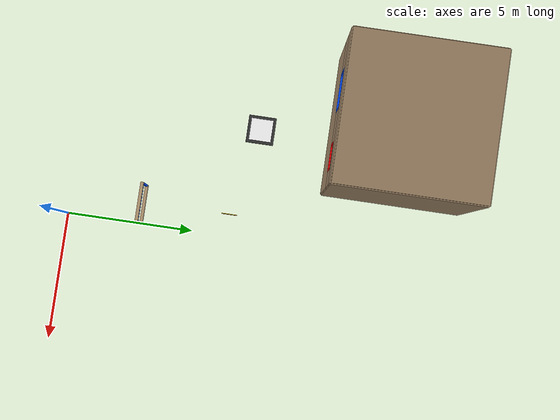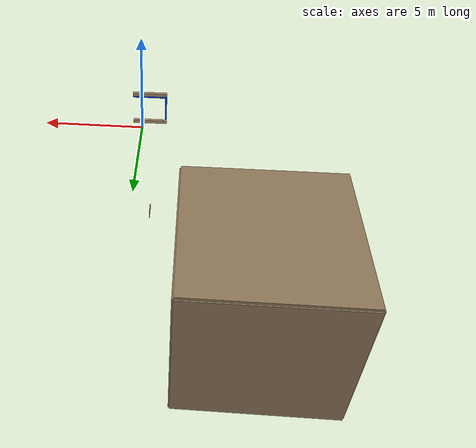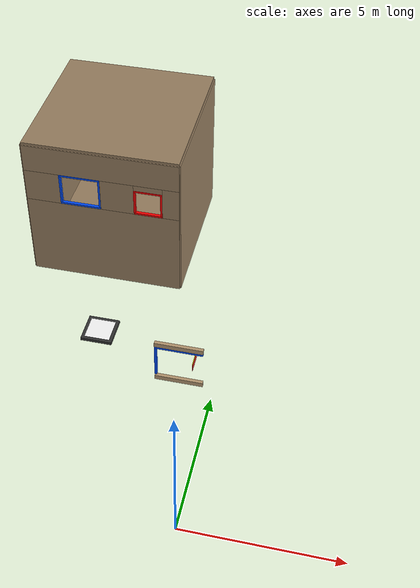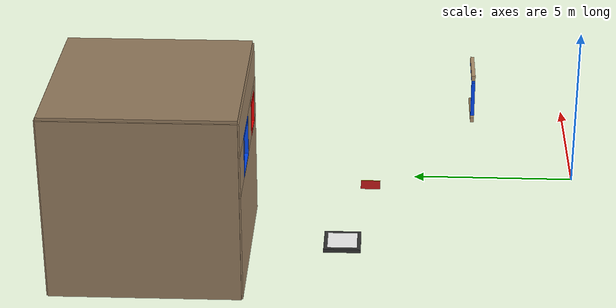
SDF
<sdf version="1.9">
 <world name="imav2026_scaled">
  <model name="room_floor">
   <static>true</static>
   <pose>-4.95 12.65 0.022 0 0 0</pose>
   <link name="link">
    <collision name="col"><geometry><box><size>5.5 5.5 0.044</size></box></geometry></collision>
    <visual name="v">
     <geometry><box><size>5.5 5.5 0.044</size></box></geometry>
     <material>
      <ambient>0.60 0.50 0.38 1</ambient>
      <diffuse>0.60 0.50 0.38 1</diffuse>
      <pbr><metal><roughness>0.8</roughness><metalness>0.0</metalness></metal></pbr>
     </material>
    </visual>
   </link>
  </model>
  <model name="room_N">
   <static>true</static>
   <pose>-4.95 15.4 2.75 0 0 0</pose>
   <link name="link">
    <collision name="col"><geometry><box><size>5.5 0.088 5.5</size></box></geometry></collision>
    <visual name="v">
     <geometry><box><size>5.5 0.088 5.5</size></box></geometry>
     <material>
      <ambient>0.60 0.50 0.38 1</ambient>
      <diffuse>0.60 0.50 0.38 1</diffuse>
      <pbr><metal><roughness>0.8</roughness><metalness>0.0</metalness></metal></pbr>
     </material>
    </visual>
   </link>
  </model>
  <model name="room_W">
   <static>true</static>
   <pose>-7.7 12.65 2.75 0 0 0</pose>
   <link name="link">
    <collision name="col"><geometry><box><size>0.088 5.5 5.5</size></box></geometry></collision>
    <visual name="v">
     <geometry><box><size>0.088 5.5 5.5</size></box></geometry>
     <material>
      <ambient>0.60 0.50 0.38 1</ambient>
      <diffuse>0.60 0.50 0.38 1</diffuse>
      <pbr><metal><roughness>0.8</roughness><metalness>0.0</metalness></metal></pbr>
     </material>
    </visual>
   </link>
  </model>
  <model name="room_E">
   <static>true</static>
   <pose>-2.2 12.65 2.75 0 0 0</pose>
   <link name="link">
    <collision name="col"><geometry><box><size>0.088 5.5 5.5</size></box></geometry></collision>
    <visual name="v">
     <geometry><box><size>0.088 5.5 5.5</size></box></geometry>
     <material>
      <ambient>0.60 0.50 0.38 1</ambient>
      <diffuse>0.60 0.50 0.38 1</diffuse>
      <pbr><metal><roughness>0.8</roughness><metalness>0.0</metalness></metal></pbr>
     </material>
    </visual>
   </link>
  </model>
  <model name="room_ceil">
   <static>true</static>
   <pose>-4.95 12.65 5.544 0 0 0</pose>
   <link name="link">
    <collision name="col"><geometry><box><size>5.5 5.5 0.088</size></box></geometry></collision>
    <visual name="v">
     <geometry><box><size>5.5 5.5 0.088</size></box></geometry>
     <material>
      <ambient>0.60 0.50 0.38 1</ambient>
      <diffuse>0.60 0.50 0.38 1</diffuse>
      <pbr><metal><roughness>0.8</roughness><metalness>0.0</metalness></metal></pbr>
     </material>
    </visual>
   </link>
  </model>
  <model name="room_S_bot">
   <static>true</static>
   <pose>-4.95 9.9 1.617 0 0 0</pose>
   <link name="link">
    <collision name="col"><geometry><box><size>5.5 0.088 3.234</size></box></geometry></collision>
    <visual name="v">
     <geometry><box><size>5.5 0.088 3.234</size></box></geometry>
     <material>
      <ambient>0.60 0.50 0.38 1</ambient>
      <diffuse>0.60 0.50 0.38 1</diffuse>
      <pbr><metal><roughness>0.8</roughness><metalness>0.0</metalness></metal></pbr>
     </material>
    </visual>
   </link>
  </model>
  <model name="room_S_top">
   <static>true</static>
   <pose>-4.95 9.9 4.983 0 0 0</pose>
   <link name="link">
    <collision name="col"><geometry><box><size>5.5 0.088 1.034</size></box></geometry></collision>
    <visual name="v">
     <geometry><box><size>5.5 0.088 1.034</size></box></geometry>
     <material>
      <ambient>0.60 0.50 0.38 1</ambient>
      <diffuse>0.60 0.50 0.38 1</diffuse>
      <pbr><metal><roughness>0.8</roughness><metalness>0.0</metalness></metal></pbr>
     </material>
    </visual>
   </link>
  </model>
  <model name="room_S_seg_L">
   <static>true</static>
   <pose>-7.073 9.9 3.85 0 0 0</pose>
   <link name="link">
    <collision name="col"><geometry><box><size>1.254 0.088 1.232</size></box></geometry></collision>
    <visual name="v">
     <geometry><box><size>1.254 0.088 1.232</size></box></geometry>
     <material>
      <ambient>0.60 0.50 0.38 1</ambient>
      <diffuse>0.60 0.50 0.38 1</diffuse>
      <pbr><metal><roughness>0.8</roughness><metalness>0.0</metalness></metal></pbr>
     </material>
    </visual>
   </link>
  </model>
  <model name="room_S_seg_M">
   <static>true</static>
   <pose>-4.4 9.9 3.85 0 0 0</pose>
   <link name="link">
    <collision name="col"><geometry><box><size>1.188 0.088 1.232</size></box></geometry></collision>
    <visual name="v">
     <geometry><box><size>1.188 0.088 1.232</size></box></geometry>
     <material>
      <ambient>0.60 0.50 0.38 1</ambient>
      <diffuse>0.60 0.50 0.38 1</diffuse>
      <pbr><metal><roughness>0.8</roughness><metalness>0.0</metalness></metal></pbr>
     </material>
    </visual>
   </link>
  </model>
  <model name="room_S_seg_R">
   <static>true</static>
   <pose>-2.497 9.9 3.85 0 0 0</pose>
   <link name="link">
    <collision name="col"><geometry><box><size>0.594 0.088 1.232</size></box></geometry></collision>
    <visual name="v">
     <geometry><box><size>0.594 0.088 1.232</size></box></geometry>
     <material>
      <ambient>0.60 0.50 0.38 1</ambient>
      <diffuse>0.60 0.50 0.38 1</diffuse>
      <pbr><metal><roughness>0.8</roughness><metalness>0.0</metalness></metal></pbr>
     </material>
    </visual>
   </link>
  </model>
  <model name="room_S_seg_above_red">
   <static>true</static>
   <pose>-3.3 9.9 4.356 0 0 0</pose>
   <link name="link">
    <collision name="col"><geometry><box><size>1.012 0.088 0.22</size></box></geometry></collision>
    <visual name="v">
     <geometry><box><size>1.012 0.088 0.22</size></box></geometry>
     <material>
      <ambient>0.60 0.50 0.38 1</ambient>
      <diffuse>0.60 0.50 0.38 1</diffuse>
      <pbr><metal><roughness>0.8</roughness><metalness>0.0</metalness></metal></pbr>
     </material>
    </visual>
   </link>
  </model>
  <model name="room_blue_top">
   <static>true</static>
   <pose>-5.72 9.9 4.433 0 0 0</pose>
   <link name="link">
    <collision name="col"><geometry><box><size>1.452 0.11 0.066</size></box></geometry></collision>
    <visual name="v">
     <geometry><box><size>1.452 0.11 0.066</size></box></geometry>
     <material>
      <ambient>0.0 0.3 1.0 1</ambient>
      <diffuse>0.0 0.3 1.0 1</diffuse>
      <pbr><metal><roughness>0.5</roughness><metalness>0.0</metalness></metal></pbr>
     </material>
    </visual>
   </link>
  </model>
  <model name="room_blue_bot">
   <static>true</static>
   <pose>-5.72 9.9 3.267 0 0 0</pose>
   <link name="link">
    <collision name="col"><geometry><box><size>1.452 0.11 0.066</size></box></geometry></collision>
    <visual name="v">
     <geometry><box><size>1.452 0.11 0.066</size></box></geometry>
     <material>
      <ambient>0.0 0.3 1.0 1</ambient>
      <diffuse>0.0 0.3 1.0 1</diffuse>
      <pbr><metal><roughness>0.5</roughness><metalness>0.0</metalness></metal></pbr>
     </material>
    </visual>
   </link>
  </model>
  <model name="room_blue_L">
   <static>true</static>
   <pose>-6.413 9.9 3.85 0 0 0</pose>
   <link name="link">
    <collision name="col"><geometry><box><size>0.066 0.11 1.1</size></box></geometry></collision>
    <visual name="v">
     <geometry><box><size>0.066 0.11 1.1</size></box></geometry>
     <material>
      <ambient>0.0 0.3 1.0 1</ambient>
      <diffuse>0.0 0.3 1.0 1</diffuse>
      <pbr><metal><roughness>0.5</roughness><metalness>0.0</metalness></metal></pbr>
     </material>
    </visual>
   </link>
  </model>
  <model name="room_blue_R">
   <static>true</static>
   <pose>-5.027 9.9 3.85 0 0 0</pose>
   <link name="link">
    <collision name="col"><geometry><box><size>0.066 0.11 1.1</size></box></geometry></collision>
    <visual name="v">
     <geometry><box><size>0.066 0.11 1.1</size></box></geometry>
     <material>
      <ambient>0.0 0.3 1.0 1</ambient>
      <diffuse>0.0 0.3 1.0 1</diffuse>
      <pbr><metal><roughness>0.5</roughness><metalness>0.0</metalness></metal></pbr>
     </material>
    </visual>
   </link>
  </model>
  <model name="room_red_top">
   <static>true</static>
   <pose>-3.3 9.9 4.213 0 0 0</pose>
   <link name="link">
    <collision name="col"><geometry><box><size>1.012 0.11 0.066</size></box></geometry></collision>
    <visual name="v">
     <geometry><box><size>1.012 0.11 0.066</size></box></geometry>
     <material>
      <ambient>1.0 0.0 0.0 1</ambient>
      <diffuse>1.0 0.0 0.0 1</diffuse>
      <pbr><metal><roughness>0.5</roughness><metalness>0.0</metalness></metal></pbr>
     </material>
    </visual>
   </link>
  </model>
  <model name="room_red_bot">
   <static>true</static>
   <pose>-3.3 9.9 3.267 0 0 0</pose>
   <link name="link">
    <collision name="col"><geometry><box><size>1.012 0.11 0.066</size></box></geometry></collision>
    <visual name="v">
     <geometry><box><size>1.012 0.11 0.066</size></box></geometry>
     <material>
      <ambient>1.0 0.0 0.0 1</ambient>
      <diffuse>1.0 0.0 0.0 1</diffuse>
      <pbr><metal><roughness>0.5</roughness><metalness>0.0</metalness></metal></pbr>
     </material>
    </visual>
   </link>
  </model>
  <model name="room_red_L">
   <static>true</static>
   <pose>-3.773 9.9 3.74 0 0 0</pose>
   <link name="link">
    <collision name="col"><geometry><box><size>0.066 0.11 0.88</size></box></geometry></collision>
    <visual name="v">
     <geometry><box><size>0.066 0.11 0.88</size></box></geometry>
     <material>
      <ambient>1.0 0.0 0.0 1</ambient>
      <diffuse>1.0 0.0 0.0 1</diffuse>
      <pbr><metal><roughness>0.5</roughness><metalness>0.0</metalness></metal></pbr>
     </material>
    </visual>
   </link>
  </model>
  <model name="room_red_R">
   <static>true</static>
   <pose>-2.827 9.9 3.74 0 0 0</pose>
   <link name="link">
    <collision name="col"><geometry><box><size>0.066 0.11 0.88</size></box></geometry></collision>
    <visual name="v">
     <geometry><box><size>0.066 0.11 0.88</size></box></geometry>
     <material>
      <ambient>1.0 0.0 0.0 1</ambient>
      <diffuse>1.0 0.0 0.0 1</diffuse>
      <pbr><metal><roughness>0.5</roughness><metalness>0.0</metalness></metal></pbr>
     </material>
    </visual>
   </link>
  </model>
  <model name="obs_wall_bd_B_blue">
   <static>true</static>
   <pose>-0.66 3.3 2.717 0 0 0</pose>
   <link name="link">
    <collision name="col"><geometry><box><size>1.452 0.11 0.154</size></box></geometry></collision>
    <visual name="v">
     <geometry><box><size>1.452 0.11 0.154</size></box></geometry>
     <material>
      <ambient>0.72 0.60 0.45 1</ambient>
      <diffuse>0.72 0.60 0.45 1</diffuse>
      <pbr><metal><roughness>0.8</roughness><metalness>0.0</metalness></metal></pbr>
     </material>
    </visual>
   </link>
  </model>
  <model name="obs_wall_bd_T_blue">
   <static>true</static>
   <pose>-0.66 3.3 4.103 0 0 0</pose>
   <link name="link">
    <collision name="col"><geometry><box><size>1.452 0.11 0.154</size></box></geometry></collision>
    <visual name="v">
     <geometry><box><size>1.452 0.11 0.154</size></box></geometry>
     <material>
      <ambient>0.72 0.60 0.45 1</ambient>
      <diffuse>0.72 0.60 0.45 1</diffuse>
      <pbr><metal><roughness>0.8</roughness><metalness>0.0</metalness></metal></pbr>
     </material>
    </visual>
   </link>
  </model>
  <model name="obs_wall_blue_top">
   <static>true</static>
   <pose>-0.66 3.3 3.993 0 0 0</pose>
   <link name="link">
    <collision name="col"><geometry><box><size>1.452 0.11 0.066</size></box></geometry></collision>
    <visual name="v">
     <geometry><box><size>1.452 0.11 0.066</size></box></geometry>
     <material>
      <ambient>0.0 0.3 1.0 1</ambient>
      <diffuse>0.0 0.3 1.0 1</diffuse>
      <pbr><metal><roughness>0.5</roughness><metalness>0.0</metalness></metal></pbr>
     </material>
    </visual>
   </link>
  </model>
  <model name="obs_wall_blue_L">
   <static>true</static>
   <pose>-1.353 3.3 3.41 0 0 0</pose>
   <link name="link">
    <collision name="col"><geometry><box><size>0.066 0.11 1.1</size></box></geometry></collision>
    <visual name="v">
     <geometry><box><size>0.066 0.11 1.1</size></box></geometry>
     <material>
      <ambient>0.0 0.3 1.0 1</ambient>
      <diffuse>0.0 0.3 1.0 1</diffuse>
      <pbr><metal><roughness>0.5</roughness><metalness>0.0</metalness></metal></pbr>
     </material>
    </visual>
   </link>
  </model>
  <model name="box_red_wallW">
   <static>true</static>
   <pose>-0.8712 6.38 0.1452 0 0 0</pose>
   <link name="link">
    <collision name="v_col"><geometry><box><size>0.022 0.6116 0.2904</size></box></geometry></collision>
    <visual name="v">
     <geometry><box><size>0.022 0.6116 0.2904</size></box></geometry>
     <material>
      <ambient>0.8 0.1 0.1 1</ambient>
      <diffuse>0.8 0.1 0.1 1</diffuse>
      <pbr><metal><roughness>0.5</roughness><metalness>0.0</metalness></metal></pbr>
     </material>
    </visual>
    <collision name="border_col">
     <pose>0.0 0.0 0.1452 0 0 0</pose>
     <geometry><box><size>0.022 0.6116 0.011</size></box></geometry>
    </collision>
    <visual name="border">
     <pose>0.0 0.0 0.1452 0 0 0</pose>
     <geometry><box><size>0.022 0.6116 0.011</size></box></geometry>
     <material>
      <ambient>0.9 0.9 0.1 1</ambient>
      <diffuse>0.9 0.9 0.1 1</diffuse>
      <emissive>0.3 0.3 0.0 1</emissive>
      <pbr><metal><roughness>0.5</roughness><metalness>0.0</metalness></metal></pbr>
     </material>
    </visual>
   </link>
  </model>
  <model name="platform_1">
   <static>true</static>
   <pose>-4.4 7.15 0.055 0 0 0</pose>
   <link name="link">
    <collision name="col"><geometry><box><size>1.1 1.1 0.11</size></box></geometry></collision>
    <visual name="v_base">
     <geometry><box><size>1.1 1.1 0.11</size></box></geometry>
     <material><ambient>0.20 0.20 0.20 1</ambient><diffuse>0.20 0.20 0.20 1</diffuse></material>
    </visual>
    <collision name="aruco_id0_col">
     <pose>0.0 0.0 0.0572 0 0 1.5708</pose>
     <geometry><box><size>0.88 0.88 0.0022</size></box></geometry>
    </collision>
    <visual name="aruco_id0">
     <pose>0.0 0.0 0.0572 0 0 1.5708</pose>
     <geometry><box><size>0.88 0.88 0.0022</size></box></geometry>
     <material>
      <diffuse>1.0 1.0 1.0 1.0</diffuse>
      <pbr>
       <metal>
        <albedo_map>model://materials/textures/aruco_marker_2.jpg</albedo_map>
        <roughness>0.5</roughness>
        <metalness>0.0</metalness>
       </metal>
      </pbr>
     </material>
    </visual>
   </link>
  </model>
 </world>
</sdf>
